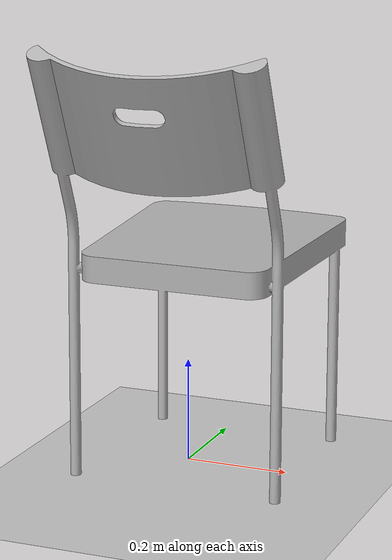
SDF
<?xml version="1.0" ?>
<sdf version="1.5">
  <world name="default">
    <physics type="ode">
      <ode>
      </ode>
    </physics>
    <include>
      <uri>model://sun</uri>
    </include>
    <include>
      <uri>model://ground_plane</uri>
    </include>
    <include>
      <pose>2.4 0.7 0 0 0 3.14159</pose>
      <uri>model://IKEA_chair_HERMAN</uri>
    </include>
  </world>
</sdf>

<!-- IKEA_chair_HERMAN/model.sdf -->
<sdf version='1.0'>
  <model name='IKEA_chair_HERMAN'>
    <static>0</static>
    <link name='link_0'>
      <inertial>
        <mass>1.2788298165119858</mass>
        <inertia>
          <ixx>79685.1370511254</ixx>
          <ixy>-84.64093994927407</ixy>
          <ixz>17.035141288757327</ixz>
          <iyy>44455.17980055237</iyy>
          <iyz>-17152.22499446416</iyz>
          <izz>71109.13666590309</izz>
        </inertia>
        <pose frame=''>2.355913 0.358004 -0.758796 0 -0 0</pose>
      </inertial>
      <pose frame=''>0 0 0 0 -0 0</pose>
      <visual name='visual'>
        <pose frame=''>0 0 0 1.58096 -0 0</pose>
        <geometry>
          <mesh>
            <uri>model://ikea_models/meshes/IKEA_chair_HERMAN/nojitter_png_2df47c3d564ce9fec858c7ee0d79c483_obj0/2df47c3d564ce9fec858c7ee0d79c483_obj0_object.obj</uri>
            <scale>0.010000 0.010000 0.010000</scale>
          </mesh>
        </geometry>
      </visual>
      <collision name='collision'>
        <pose frame=''>0 0 0 1.58096 -0 0</pose>
        <geometry>
          <mesh>
            <uri>model://ikea_models/meshes/IKEA_chair_HERMAN/nojitter_png_2df47c3d564ce9fec858c7ee0d79c483_obj0/2df47c3d564ce9fec858c7ee0d79c483_obj0_object.obj</uri>
            <scale>0.010000 0.010000 0.010000</scale>
          </mesh>
        </geometry>
      </collision>
    </link>
  </model>
</sdf>
